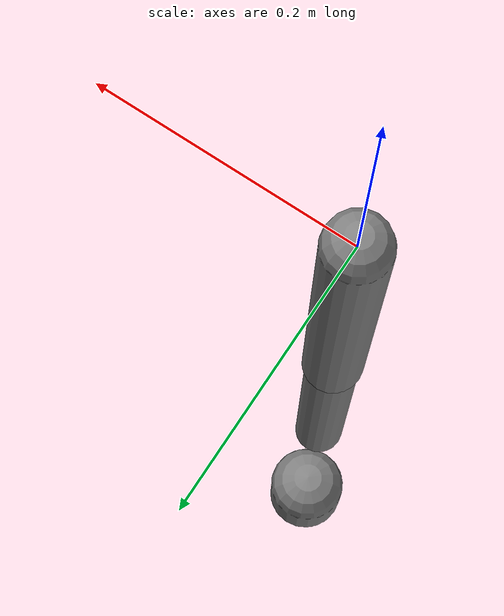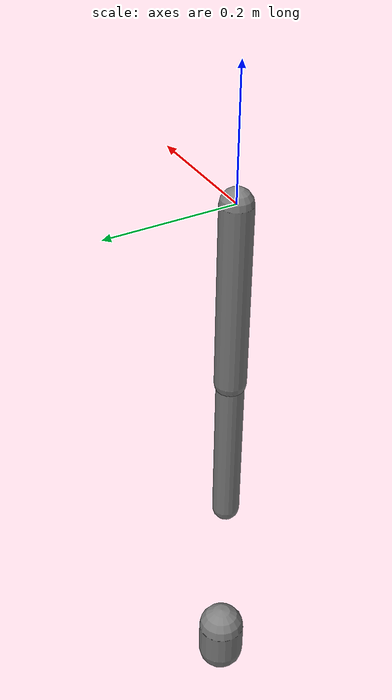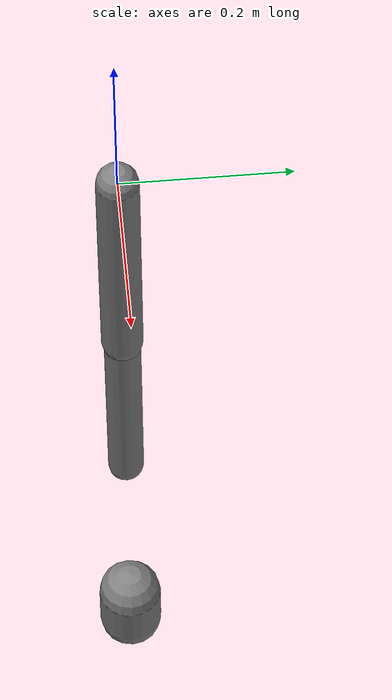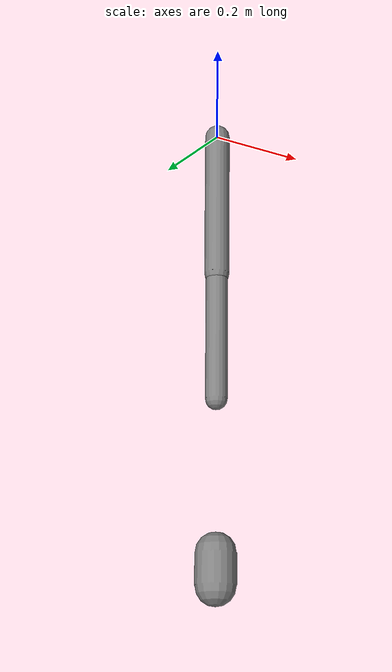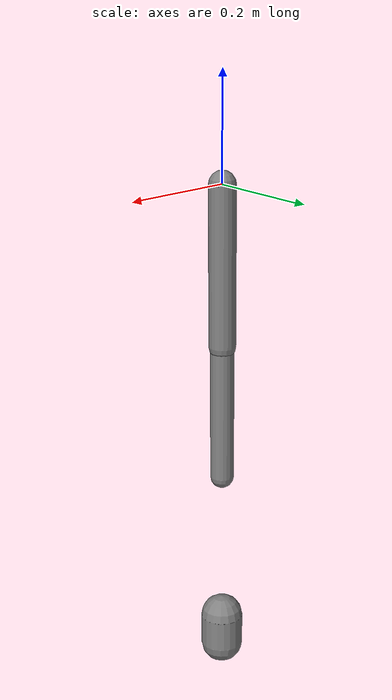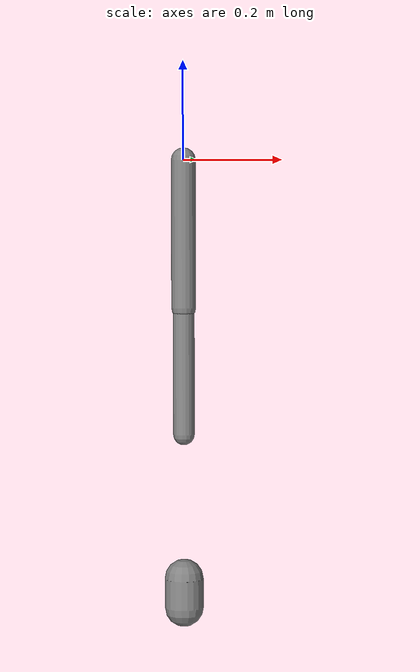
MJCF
<mujoco model="prosthesis_smoke_test">
  <compiler angle="radian" />
  <worldbody>
    <body name="mount" pos="0 0 0">
      <body name="upper_arm" pos="0 0 -0">
        <joint name="shoulder_flex" type="hinge" axis="0 1 0" range="-1.5708 2.0944" />
        <joint name="shoulder_abduct" type="hinge" axis="1 0 0" range="-1.0472 1.5708" />
        <geom type="capsule" fromto="0 0 0 0 0 -0.3" size="0.025" />
        <body name="forearm" pos="0 0 -0.3">
          <joint name="elbow" type="hinge" axis="0 1 0" range="0 2.0944" />
          <geom type="capsule" fromto="0 0 0 0 0 -0.26" size="0.022" />
          <body name="gripper" pos="0 0 -0.56">
            <joint name="wrist" type="hinge" axis="1 0 0" range="-1.0472 1.0472" />
            <geom type="capsule" fromto="0 0 0 0 0 -0.06" size="0.04" />
          </body>
        </body>
      </body>
    </body>
  </worldbody>
  <actuator>
    <motor joint="shoulder_flex" gear="20.0" />
    <motor joint="shoulder_abduct" gear="20.0" />
    <motor joint="elbow" gear="20.0" />
    <motor joint="wrist" gear="20.0" />
  </actuator>
</mujoco>
